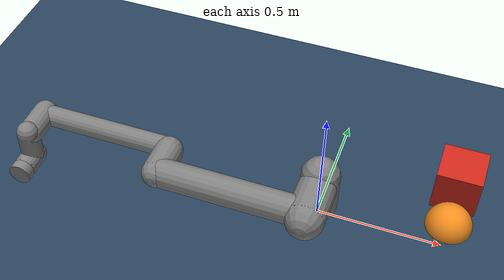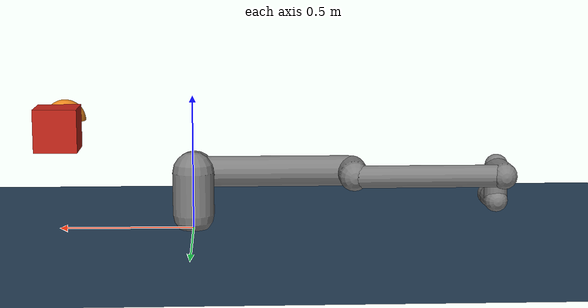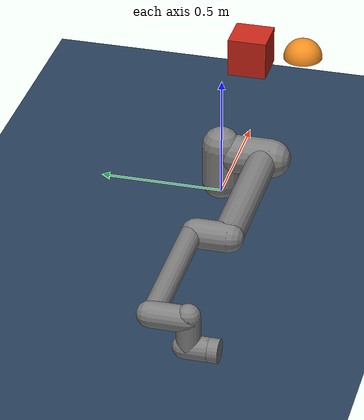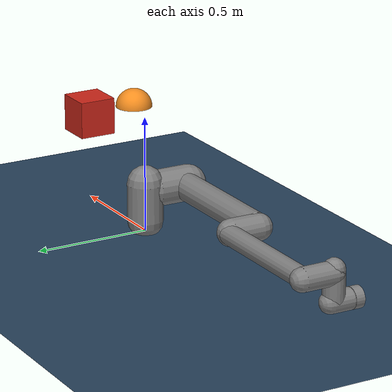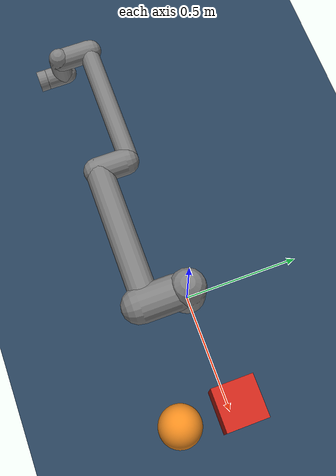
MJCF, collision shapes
<mujoco model="ur10e contact scene">
  <include file="ur10e_torque.xml"/>

  <statistic center="0.35 0 0.45" extent="1.3"/>

  <option timestep="0.001" integrator="implicitfast" gravity="0 0 -9.81"/>

  <!-- 렌더/조명/환경 설정 -->
  <visual>
    <scale framelength="0.2" framewidth="0.02"/>
    <headlight diffuse="0.6 0.6 0.6" ambient="0.1 0.1 0.1" specular="0 0 0"/>
    <rgba haze="0.15 0.25 0.35 1"/>
    <global azimuth="120" elevation="-20"/>
  </visual>

  <!-- 장면을 둘러싼 배경의 텍스쳐/머터리얼 자원 -->
  <asset>
    <!-- 하늘 배경 -->
    <texture type="skybox" builtin="gradient" rgb1="0.3 0.5 0.7" rgb2="0 0 0" width="512" height="3072"/>
    <!-- 바닥용 격자 텍스처 -->
    <texture type="2d" name="groundplane" builtin="checker" mark="edge" rgb1="0.2 0.3 0.4" rgb2="0.1 0.2 0.3"
      markrgb="0.8 0.8 0.8" width="300" height="300"/>
    <!-- 바닥 머터리얼 -->
    <material name="groundplane" texture="groundplane" texuniform="true" texrepeat="5 5" reflectance="0.2"/>
    <!-- 접촉 박스 (시각 표시)에 쓸 빨간 머터리얼 -->
    <material name="contact_red" rgba="0.8 0.15 0.1 1"/>
    <material name="contact_amber" rgba="0.95 0.55 0.12 1"/>
    <mesh name="contact_hemisphere_mesh" file="contact_hemisphere.obj"/>
  </asset>

  <!-- 장면의 물리적 객체들 -->
  <worldbody>
    <!-- 장면 광원 -->
    <light pos="0 0 1.8" dir="0 0 -1" directional="true"/>

    <!-- 바닥 geometry -->
    <geom name="floor" size="0 0 0.05" type="plane" material="groundplane"/>

    <!-- 접촉 박스 -->
    <body name="contact_box" pos="0.5 0.0 0.38">
      <!-- 접촉 박스 geometry -->
      <geom name="contact_box_geom" type="box" size="0.08 0.08 0.08" material="contact_red"
            condim="4" friction="1.0 0.1 0.001"
            solimp="0.9 0.95 0.001" solref="0.02 1"/>
      <!-- condim: 접촉 제약 차원 (4: 1개의 Normal + 3개의 Tangent 제약) -->
      <!-- friction="sliding, tortional(0.2*sliding), rolling(0.01*sliding)" -->
      <!-- solimp/solref: soft constraint/contact solver 파라미터 -->
      <!-- material="contact_red": 위에서 정의한 빨간 머터리얼을 적용 -->
    </body>
    <!-- 160 mm diameter; 60 mm gap from box; apex level with box top. -->
    <body name="contact_hemisphere" pos="0.5 -0.22 0.38">
      <geom name="contact_hemisphere_geom" type="mesh" mesh="contact_hemisphere_mesh"
            material="contact_amber" condim="4" friction="1.0 0.1 0.001"/>
    </body>
  </worldbody>
</mujoco>

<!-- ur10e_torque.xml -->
<mujoco model="ur10e">
  <compiler angle="radian" meshdir="assets" autolimits="true"/>

  <option integrator="implicitfast"/>

  <default>
    <default class="ur10e">
      <material specular="0.5" shininess="0.25"/>
      <joint axis="0 1 0" range="-6.28319 6.28319" armature="0.1"/>
      <!--
        Torque motor model for inverse-dynamics acceleration control.
        data.ctrl is actuator torque, not target joint position.
      -->
      <motor ctrlrange="-330 330"/>
      <default class="size4">
        <joint damping="10"/>
        <!-- Actuator torque limit for shoulder joints, in Nm for hinge joints. -->
        <motor ctrlrange="-330 330" forcerange="-330 330"/>
      </default>
      <default class="size3">
        <joint damping="5"/>
        <!-- Actuator torque limit for the elbow joint, in Nm for hinge joints. -->
        <motor ctrlrange="-150 150" forcerange="-150 150"/>
        <default class="size3_limited">
          <!-- Physical joint angle limit and matching position command limit for elbow. -->
          <joint range="-3.1415 3.1415"/>
        </default>
      </default>
      <default class="size2">
        <joint damping="2"/>
        <!-- Actuator torque limit for wrist joints, in Nm for hinge joints. -->
        <motor ctrlrange="-56 56" forcerange="-56 56"/>
      </default>
      <default class="visual">
        <geom type="mesh" contype="0" conaffinity="0" group="2"/>
      </default>
      <default class="collision">
        <geom type="capsule" group="3"/>
        <default class="eef_collision">
          <geom type="cylinder"/>
        </default>
      </default>
      <site size="0.001" rgba="0.5 0.5 0.5 0.3" group="4"/>
    </default>
  </default>

  <asset>
    <material class="ur10e" name="black" rgba="0.033 0.033 0.033 1"/>
    <material class="ur10e" name="jointgray" rgba="0.278 0.278 0.278 1"/>
    <material class="ur10e" name="linkgray" rgba="0.82 0.82 0.82 1"/>
    <material class="ur10e" name="urblue" rgba="0.49 0.678 0.8 1"/>

    <mesh file="base_0.obj"/>
    <mesh file="base_1.obj"/>
    <mesh file="shoulder_0.obj"/>
    <mesh file="shoulder_1.obj"/>
    <mesh file="shoulder_2.obj"/>
    <mesh file="upperarm_0.obj"/>
    <mesh file="upperarm_1.obj"/>
    <mesh file="upperarm_2.obj"/>
    <mesh file="upperarm_3.obj"/>
    <mesh file="forearm_0.obj"/>
    <mesh file="forearm_1.obj"/>
    <mesh file="forearm_2.obj"/>
    <mesh file="forearm_3.obj"/>
    <mesh file="wrist1_0.obj"/>
    <mesh file="wrist1_1.obj"/>
    <mesh file="wrist1_2.obj"/>
    <mesh file="wrist2_0.obj"/>
    <mesh file="wrist2_1.obj"/>
    <mesh file="wrist2_2.obj"/>
    <mesh file="wrist3.obj"/>
  </asset>

  <worldbody>
    <light name="spotlight" mode="targetbodycom" target="wrist_2_link" pos="0 -1 2"/>
    <body name="base" quat="0 0 0 -1" childclass="ur10e">
      <inertial mass="4.0" pos="0 0 0" diaginertia="0.0061063308908 0.0061063308908 0.01125"/>
      <geom mesh="base_0" material="black" class="visual"/>
      <geom mesh="base_1" material="jointgray" class="visual"/>
      <body name="shoulder_link" pos="0 0 0.181">
        <inertial pos="0 0 0" mass="7.778" diaginertia="0.0314743 0.0314743 0.0218756"/>
        <joint name="shoulder_pan_joint" class="size4" axis="0 0 1"/>
        <geom mesh="shoulder_0" material="urblue" class="visual"/>
        <geom mesh="shoulder_1" material="black" class="visual"/>
        <geom mesh="shoulder_2" material="jointgray" class="visual"/>
        <geom class="collision" size="0.078 0.08" pos="0 0 -0.05"/>
        <body name="upper_arm_link" pos="0 0.176 0" quat="1 0 1 0">
          <inertial pos="0 0 0.3065" mass="12.93" diaginertia="0.423074 0.423074 0.0363656"/>
          <joint name="shoulder_lift_joint" class="size4"/>
          <geom mesh="upperarm_0" material="black" class="visual"/>
          <geom mesh="upperarm_1" material="jointgray" class="visual"/>
          <geom mesh="upperarm_2" material="urblue" class="visual"/>
          <geom mesh="upperarm_3" material="linkgray" class="visual"/>
          <geom class="collision" pos="0 -0.05 0" quat="1 1 0 0" size="0.078 0.08"/>
          <geom class="collision" size="0.06 0.3" pos="0 0 0.3"/>
          <body name="forearm_link" pos="0 -0.137 0.613">
            <inertial pos="0 0 0.2855" mass="3.87" diaginertia="0.11059 0.11059 0.0108844"/>
            <joint name="elbow_joint" class="size3_limited"/>
            <geom mesh="forearm_0" material="urblue" class="visual"/>
            <geom mesh="forearm_1" material="black" class="visual"/>
            <geom mesh="forearm_2" material="jointgray" class="visual"/>
            <geom mesh="forearm_3" material="linkgray" class="visual"/>
            <geom class="collision" pos="0 0.08 0" quat="1 1 0 0" size="0.058 0.065"/>
            <geom class="collision" size="0.043 0.28" pos="0 0 0.29"/>
            <body name="wrist_1_link" pos="0 0 0.571" quat="1 0 1 0">
              <inertial pos="0 0.135 0" quat="0.5 0.5 -0.5 0.5" mass="1.96"
                diaginertia="0.0055125 0.00510825 0.00510825"/>
              <joint name="wrist_1_joint" class="size2"/>
              <geom mesh="wrist1_0" material="black" class="visual"/>
              <geom mesh="wrist1_1" material="urblue" class="visual"/>
              <geom mesh="wrist1_2" material="jointgray" class="visual"/>
              <geom class="collision" pos="0 0.06 0" quat="1 1 0 0" size="0.05 0.07"/>
              <body name="wrist_2_link" pos="0 0.135 0">
                <inertial pos="0 0 0.12" quat="0.5 0.5 -0.5 0.5" mass="1.96"
                  diaginertia="0.0055125 0.00510825 0.00510825"/>
                <joint name="wrist_2_joint" axis="0 0 1" class="size2"/>
                <geom mesh="wrist2_0" material="black" class="visual"/>
                <geom mesh="wrist2_1" material="urblue" class="visual"/>
                <geom mesh="wrist2_2" material="jointgray" class="visual"/>
                <geom class="collision" size="0.046 0.065" pos="0 0 0.05"/>
                <geom class="collision" pos="0 0.028 0.12" quat="1 1 0 0" size="0.046 0.043"/>
                <body name="wrist_3_link" pos="0 0 0.12">
                  <inertial pos="0 0.092 0" quat="0 1 -1 0" mass="0.202"
                    diaginertia="0.000204525 0.000144346 0.000144346"/>
                  <joint name="wrist_3_joint" class="size2"/>
                  <geom material="linkgray" mesh="wrist3" class="visual"/>
                  <geom class="eef_collision" pos="0 0.097 0" quat="1 1 0 0" size="0.046 0.02"/>
                  <site name="attachment_site" pos="0 0.1 0" quat="-1 1 0 0"/>
                </body>
              </body>
            </body>
          </body>
        </body>
      </body>
    </body>
  </worldbody>

  <actuator>
    <!--
      Torque motors for inverse-dynamics acceleration control.
      The ROS node computes tau_cmd and writes it to data.ctrl.
    -->
    <motor class="size4" name="shoulder_pan" joint="shoulder_pan_joint"/>
    <motor class="size4" name="shoulder_lift" joint="shoulder_lift_joint"/>
    <motor class="size3_limited" name="elbow" joint="elbow_joint"/>
    <motor class="size2" name="wrist_1" joint="wrist_1_joint"/>
    <motor class="size2" name="wrist_2" joint="wrist_2_joint"/>
    <motor class="size2" name="wrist_3" joint="wrist_3_joint"/>
  </actuator>

  <keyframe>
    <key name="home" qpos="-1.5708 -1.5708 1.5708 -1.5708 -1.5708 0" ctrl="-1.5708 -1.5708 1.5708 -1.5708 -1.5708 0"/>
  </keyframe>
</mujoco>
